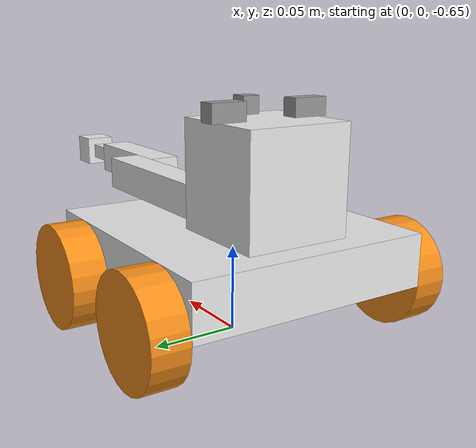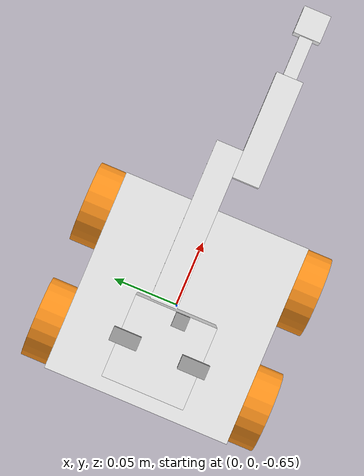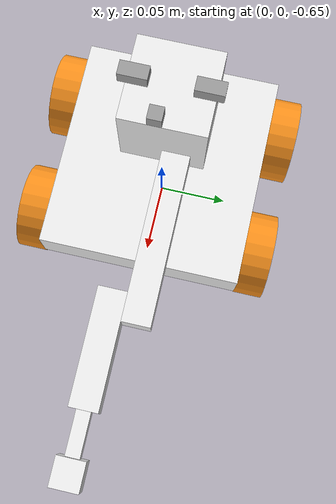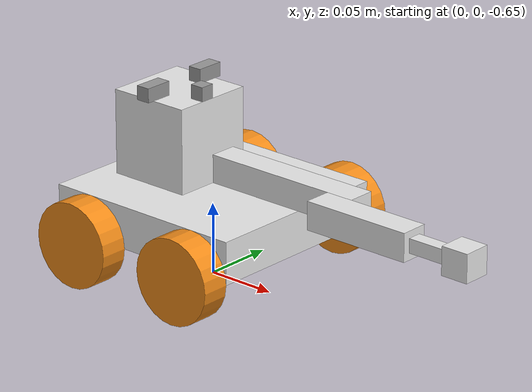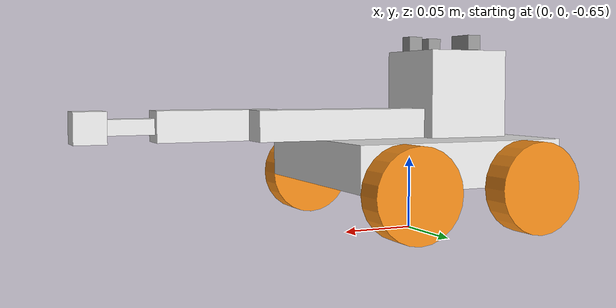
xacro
<?xml version='1.0'?>
<robot xmlns:xacro="http://www.ros.org/wiki/xacro" name="project_robot">

    <!-- Importing other files -->
    <xacro:include filename="$(find 285610)/urdf/materials.xacro" />
    <xacro:include filename="$(find 285610)/urdf/inertial.urdf.xacro" />
    <xacro:include filename="$(find 285610)/urdf/285610_robot.gazebo" />

    <!-- Body dimentions -->
    <xacro:property name="body_x" value="0.15" />
    <xacro:property name="body_y" value="0.14" />
    <xacro:property name="body_z" value="0.03" />

    <!-- Wheel dimentions -->
    <xacro:property name="wheel_r" value="0.03" />
    <xacro:property name="wheel_l" value="0.02" />
    <xacro:property name="wheel_x" value="${body_x/2.0-wheel_r}" />
    <xacro:property name="wheel_y" value="${body_y/2.0+wheel_l/2.0}" />
    <xacro:property name="wheel_z" value="${-body_z/2.0}" />

    <!-- Upper arm dimentions -->
    <xacro:property name="upper_arm_x" value="0.14" />
    <xacro:property name="upper_arm_y" value="0.02" />
    <xacro:property name="upper_arm_z" value="0.02" />

    <!-- Forearm dimentions -->
    <xacro:property name="forearm_x" value="0.08" />
    <xacro:property name="forearm_y" value="0.02" />
    <xacro:property name="forearm_z" value="0.02" />

    <!-- Prism part dimentions -->
    <xacro:property name="prism_part_x" value="0.09" />
    <xacro:property name="prism_part_y" value="0.01" />
    <xacro:property name="prism_part_z" value="0.01" />

    <!-- Smasher dimentions -->
    <xacro:property name="smasher_x" value="0.02" />
    <xacro:property name="smasher_y" value="0.02" />
    <xacro:property name="smasher_z" value="0.02" />

    <!-- Counterweight dimentions -->
    <xacro:property name="counterweight_x" value="0.06" />
    <xacro:property name="counterweight_y" value="0.06" />
    <xacro:property name="counterweight_z" value="0.06" />

    <!-- Camera dimentions -->
    <xacro:property name="camera_x" value="0.01" />
    <xacro:property name="camera_y" value="0.01" />
    <xacro:property name="camera_z" value="0.01" />

    <!-- Camera dimentions -->
    <xacro:property name="lidar_x" value="0.02" />
    <xacro:property name="lidar_y" value="0.01" />
    <xacro:property name="lidar_z" value="0.01" />

    <!-- Material density -->
    <xacro:property name="body_density" value="2710.0" />
    <xacro:property name="wheel_density" value="2710.0" />
    <xacro:property name="upper_arm_density" value="2710.0" />
    <xacro:property name="forearm_density" value="2710.0" />
    <xacro:property name="prism_part_density" value="2710.0" />
    <xacro:property name="smasher_density" value="2710.0" />
    <xacro:property name="counterweight_density" value="2710.0" />
    <xacro:property name="camera_density" value="1000.0" />
    <xacro:property name="lidar_density" value="1000.0" />

    <!-- Pi constant -->
    <xacro:property name="Pi" value="3.14159265" />

    <!-- Masses -->
    <xacro:property name="body_mass" value="${body_density*body_x*body_y*body_z}" />
    <xacro:property name="wheel_mass" value="${wheel_density*Pi*wheel_r*wheel_r*wheel_l}" />
    <xacro:property name="upper_arm_mass" value="${upper_arm_density*upper_arm_x*upper_arm_y*upper_arm_z}" />
    <xacro:property name="forearm_mass" value="${forearm_density*forearm_x*forearm_y*forearm_z}" />
    <xacro:property name="prism_part_mass" value="${prism_part_density*prism_part_x*prism_part_y*prism_part_z}" />
    <xacro:property name="smasher_mass" value="${smasher_density*smasher_x*smasher_y*smasher_z}" />
    <xacro:property name="counterweight_mass" value="${counterweight_density*counterweight_x*counterweight_y*counterweight_z}" />
    <xacro:property name="camera_mass" value="${camera_density*camera_x*camera_y*camera_z}" />
    <xacro:property name="lidar_mass" value="${lidar_density*lidar_x*lidar_y*lidar_z}" />

    <!-- Defining wheel -->
    <xacro:macro name="define_wheel" params="x y z name">
        <link name='wheel_${name}'>
            <visual>
                <origin xyz="0 0 0" rpy="0 ${Pi/2} 0"/>
                <geometry>
                    <cylinder length="${wheel_l}" radius="${wheel_r}"/>
                </geometry>
                <material name="orange"/>
            </visual>

            <collision>
                <origin xyz="0 0 0" rpy="0 ${Pi/2} 0"/>
                <geometry>
                    <cylinder length="${wheel_l}" radius="${wheel_r}"/>
                </geometry>
            </collision>
            <xacro:inertial_cylinder length="${wheel_l}" radius="${wheel_r}" mass="${wheel_mass}">
                <origin xyz="0 0 0" rpy="0 ${Pi/2} 0"/>
            </xacro:inertial_cylinder>
        </link>

        <joint type="continuous" name="wheel_${name}_joint">
            <origin xyz="${x} ${y} ${z}" rpy="0 0 ${Pi/2}"/>
            <child link="wheel_${name}"/>
            <parent link="base_link"/>
        </joint>
    </xacro:macro>

    <!-- Links start here -->

    <link name="world_link" />

    <joint name="world_link_joint" type="fixed">
        <origin xyz="0.0 0.0 -0.6" rpy="0.0 0.0 0.0"/>
        <parent link="world_link"/>
        <child link="base_link"/>
    </joint>

    <link name='base_link'>
        <visual>
            <origin xyz="0.0 0.0 0.0" rpy="0.0 0.0 0.0"/>
            <geometry>
                <box size="${body_x} ${body_y} ${body_z}"/>
            </geometry>
            <material name="white"/>
        </visual>
        <collision>
            <origin xyz="0.0 0.0 0.0" rpy="0.0 0.0 0.0"/>
            <geometry>
                <box size="${body_x} ${body_y} ${body_z}"/>
            </geometry>
        </collision>
        <xacro:inertial_box x="${body_x}" y="${body_y}" z="${body_z}" mass="${body_mass}">
            <origin xyz="0.0 0.0 0.0" rpy="0.0 0.0 0.0"/>
        </xacro:inertial_box>
    </link>

    <!-- Wheels -->
    <xacro:define_wheel x="${wheel_x}" y="${wheel_y}" z="${wheel_z}" name="1"/>
    <xacro:define_wheel x="-${wheel_x}" y="${wheel_y}" z="${wheel_z}" name="2"/>
    <xacro:define_wheel x="${wheel_x}" y="-${wheel_y}" z="${wheel_z}" name="3"/>
    <xacro:define_wheel x="-${wheel_x}" y="-${wheel_y}" z="${wheel_z}" name="4"/>

    <!-- Upper arm -->
    <link name="upper_arm">
        <visual>
            <origin xyz="${body_x/3} ${upper_arm_y/2} ${upper_arm_z/2}" rpy="0 0 0"/>
            <geometry>
                <box size="${upper_arm_x} ${upper_arm_y} ${upper_arm_z}"/>
            </geometry>
            <material name="white"/>
        </visual>
        <collision>
            <origin xyz="${body_x/3} ${upper_arm_y/2} ${upper_arm_z/2}" rpy="0 0 0"/>
            <geometry>
                <box size="${upper_arm_x} ${upper_arm_y} ${upper_arm_z}"/>
            </geometry>
        </collision>
        <xacro:inertial_box x="${upper_arm_x}" y="${upper_arm_y}" z="${upper_arm_z}" mass="${upper_arm_mass}">
            <origin xyz="${body_x/3} ${upper_arm_y/2} ${upper_arm_z/2}" rpy="0 0 0"/>
        </xacro:inertial_box>
    </link>

    <joint type="revolute" name="upper_arm_joint" >
        <origin xyz="0 0 ${body_z/2}" rpy="0 0 0"/>
        <child link="upper_arm"/>
        <parent link="base_link"/>
        <axis xyz="0 0 1"/>
        <limit lower="${-Pi}" upper="${Pi}" effort="1" velocity="10"/>
    </joint>

    <!-- Forearm -->
    <link name="forearm">
        <visual>
            <origin xyz="${forearm_x/2-forearm_y/2} ${-forearm_y/2} 0" rpy="0 0 0"/>
            <geometry>
                <box size="${forearm_x} ${forearm_y} ${forearm_z}"/>
            </geometry>
            <material name="white"/>
        </visual>
        <collision>
            <origin xyz="${forearm_x/2-forearm_y/2} ${-forearm_y/2} 0" rpy="0 0 0"/>
            <geometry>
                <box size="${forearm_x} ${forearm_y} ${forearm_z}"/>
            </geometry>
        </collision>
        <xacro:inertial_box x="${forearm_x}" y="${forearm_y}" z="${forearm_z}" mass="${forearm_mass}">
            <origin xyz="${forearm_x/2-forearm_y/2} ${-forearm_y/2} 0" rpy="0 0 0"/>
        </xacro:inertial_box>
    </link>

    <joint type="revolute" name="forearm_joint" >
        <origin xyz="${body_x/3+upper_arm_x/2-upper_arm_y/2} 0 ${upper_arm_z/2}" rpy="0 0 0"/>
        <parent link="upper_arm"/>
        <child link="forearm"/>
        <axis xyz="0 1 0"/>
        <limit lower="${-Pi}" upper="${Pi/2}" effort="1" velocity="10"/>
    </joint>

    <!-- Prism part -->
    <link name="prism_part">
        <visual>
            <origin xyz="${prism_part_x/2} 0 0" rpy="0 0 0"/>
            <geometry>
                <box size="${prism_part_x} ${prism_part_y} ${prism_part_z}"/>
            </geometry>
            <material name="white"/>
        </visual>
        <collision>
            <origin xyz="0 0 0" rpy="0 0 0"/>
            <geometry>
                <box size="${prism_part_x} ${prism_part_y} ${prism_part_z}"/>
            </geometry>
        </collision>
        <xacro:inertial_box x="${prism_part_x}" y="${prism_part_y}" z="${prism_part_z}" mass="${prism_part_mass}">
            <origin xyz="${prism_part_x/2} 0 0" rpy="0 0 0"/>
        </xacro:inertial_box>
    </link>

    <joint type="prismatic" name="prism_part_joint" >
        <origin xyz="${forearm_y/2} ${-forearm_y/2} 0" rpy="0 0 0"/>
        <parent link="forearm"/>
        <child link="prism_part"/>
        <axis xyz="1 0 0"/>
        <limit lower="0" upper="${prism_part_x/2}" effort="1" velocity="10"/>
    </joint>

    <!-- Smasher -->
    <link name="smasher">
        <visual>
            <origin xyz="${smasher_x/2} 0 0" rpy="0 0 0"/>
            <geometry>
                <box size="${smasher_x} ${smasher_y} ${smasher_z}"/>
            </geometry>
            <material name="white"/>
        </visual>
        <collision>
            <origin xyz="0 0 0" rpy="0 0 0"/>
            <geometry>
                <box size="${smasher_x} ${smasher_y} ${smasher_z}"/>
            </geometry>
        </collision>
        <xacro:inertial_box x="${smasher_x}" y="${smasher_y}" z="${smasher_z}" mass="${smasher_mass}">
            <origin xyz="${smasher_x/2} 0 0" rpy="0 0 0"/>
        </xacro:inertial_box>
    </link>

    <joint type="revolute" name="smasher_joint" >
        <origin xyz="${prism_part_x} 0 0" rpy="0 0 0"/>
        <parent link="prism_part"/>
        <child link="smasher"/>
        <axis xyz="1 0 0"/>
        <limit lower="${-Pi}" upper="${Pi}" effort="1" velocity="10"/>
    </joint>

    <!-- Counterweight -->
    <link name="counterweight">
        <visual>
            <origin xyz="${-counterweight_x/2} 0 ${counterweight_z/2}" rpy="0 0 0"/>
            <geometry>
                <box size="${counterweight_x} ${counterweight_y} ${counterweight_z}"/>
            </geometry>
            <material name="white"/>
        </visual>
        <collision>
            <origin xyz="${-counterweight_x/2} 0 ${counterweight_z/2}" rpy="0 0 0"/>
            <geometry>
                <box size="${counterweight_x} ${counterweight_y} ${counterweight_z}"/>
            </geometry>
        </collision>
        <xacro:inertial_box x="${counterweight_x}" y="${counterweight_y}" z="${counterweight_z}" mass="${counterweight_mass}">
            <origin xyz="${-counterweight_x/2} 0 ${counterweight_z/2}" rpy="0 0 0"/>
        </xacro:inertial_box>
    </link>

    <joint type="fixed" name="counterweight_joint" >
        <origin xyz="0 0 0" rpy="0 0 0"/>
        <parent link="upper_arm"/>
        <child link="counterweight"/>
        <limit lower="${-Pi}" upper="${Pi}" effort="1" velocity="10"/>
    </joint>

    <!-- Camera -->
    <link name="camera">
        <visual>
            <origin xyz="${counterweight_x/2-camera_x/2} ${-camera_y/2} ${camera_z/2}" rpy=" 0 0 0"/>
            <geometry>
                <box size="${camera_x} ${camera_y} ${camera_z}"/>
            </geometry>
            <material name="grey"/>
        </visual>
        <collision>
            <origin xyz="${counterweight_x/2-camera_x/2} ${-camera_y/2} ${camera_z/2}" rpy=" 0 0 0"/>
            <geometry>
                <box size="${camera_x} ${camera_y} ${camera_z}"/>
            </geometry>
        </collision>
        <xacro:inertial_box x="${camera_x}" y="${camera_y}" z="${camera_z}" mass="${camera_mass}">
            <origin xyz="${counterweight_x/2-camera_x/2} ${-camera_y/2} ${camera_z/2}" rpy=" 0 0 0"/>
        </xacro:inertial_box>
    </link>

    <joint type="fixed" name="camera_joint">
        <origin xyz="${-counterweight_x/2} 0 ${counterweight_z}" rpy="0 0 0"/>
        <child link="camera"/>
        <parent link="counterweight"/>
    </joint>

    <!-- Lidar_l -->
    <link name="lidar_l">
        <visual>
            <origin xyz="0 ${counterweight_y/2-lidar_y/2} ${lidar_z/2}" rpy=" 0 0 ${Pi/2}"/>
            <geometry>
                <box size="${lidar_x} ${lidar_y} ${lidar_z}"/>
            </geometry>
            <material name="grey"/>
        </visual>
        <collision>
            <origin xyz="0 ${counterweight_y/2-lidar_y/2} ${lidar_z/2}" rpy=" 0 0 ${Pi/2}"/>
            <geometry>
                <box size="${lidar_x} ${lidar_y} ${lidar_z}"/>
            </geometry>
        </collision>
        <xacro:inertial_box x="${lidar_x}" y="${lidar_y}" z="${lidar_z}" mass="${lidar_mass}">
            <origin xyz="0 ${counterweight_y/2-lidar_y/2} ${lidar_z/2}" rpy=" 0 0 ${Pi/2}"/>
        </xacro:inertial_box>
    </link>

    <joint type="fixed" name="lidar_l_joint">
        <origin xyz="${-counterweight_x/2} 0 ${counterweight_z}" rpy="0 0 0"/>
        <child link="lidar_l"/>
        <parent link="counterweight"/>
    </joint>

    <!-- Lidar_r -->
    <link name="lidar_r">
        <visual>
            <origin xyz="0 ${-counterweight_y/2+lidar_y/2} ${lidar_z/2}" rpy=" 0 0 ${-Pi/2}"/>
            <geometry>
                <box size="${lidar_x} ${lidar_y} ${lidar_z}"/>
            </geometry>
            <material name="grey"/>
        </visual>
        <collision>
            <origin xyz="0 ${-counterweight_y/2+lidar_y/2} ${lidar_z/2}" rpy=" 0 0 ${-Pi/2}"/>
            <geometry>
                <box size="${lidar_x} ${lidar_y} ${lidar_z}"/>
            </geometry>
        </collision>
        <xacro:inertial_box x="${lidar_x}" y="${lidar_y}" z="${lidar_z}" mass="${lidar_mass}">
            <origin xyz="0 ${-counterweight_y/2+lidar_y/2} ${lidar_z/2}" rpy=" 0 0 ${-Pi/2}"/>
        </xacro:inertial_box>
    </link>

    <joint type="fixed" name="lidar_r_joint">
        <origin xyz="${-counterweight_x/2} 0 ${counterweight_z}" rpy="0 0 0"/>
        <child link="lidar_r"/>
        <parent link="counterweight"/>
    </joint>

    <!-- Transmission -->
    <transmission name="wheel_l_f_tran">
        <type>transmission_interface/SimpleTransmission</type>
        <joint name="wheel_1_joint">
            <hardwareInterface>hardware_interface/VelocityJointInterface</hardwareInterface>
        </joint>
        <actuator name="wheel_l_f_motor">
            <hardwareInterface>hardware_interface/VelocityJointInterface</hardwareInterface>
            <mechanicalReduction>1</mechanicalReduction>
        </actuator>
    </transmission>

    <transmission name="wheel_l_b_tran">
        <type>transmission_interface/SimpleTransmission</type>
        <joint name="wheel_2_joint">
            <hardwareInterface>hardware_interface/VelocityJointInterface</hardwareInterface>
        </joint>
        <actuator name="wheel_l_b_motor">
            <hardwareInterface>hardware_interface/VelocityJointInterface</hardwareInterface>
            <mechanicalReduction>1</mechanicalReduction>
        </actuator>
    </transmission>

    <transmission name="wheel_r_f_tran">
        <type>transmission_interface/SimpleTransmission</type>
        <joint name="wheel_3_joint">
            <hardwareInterface>hardware_interface/VelocityJointInterface</hardwareInterface>
        </joint>
        <actuator name="wheel_r_f_motor">
            <hardwareInterface>hardware_interface/VelocityJointInterface</hardwareInterface>
            <mechanicalReduction>1</mechanicalReduction>
        </actuator>
    </transmission>

    <transmission name="wheel_r_b_tran">
        <type>transmission_interface/SimpleTransmission</type>
        <joint name="wheel_4_joint">
            <hardwareInterface>hardware_interface/VelocityJointInterface</hardwareInterface>
        </joint>
        <actuator name="wheel_r_b_motor">
            <hardwareInterface>hardware_interface/VelocityJointInterface</hardwareInterface>
            <mechanicalReduction>1</mechanicalReduction>
        </actuator>
    </transmission>

    <transmission name="turret_tran">
        <type>transmission_interface/SimpleTransmission</type>
        <joint name="upper_arm_joint">
            <hardwareInterface>hardware_interface/EffortJointInterface</hardwareInterface>
        </joint>
        <actuator name="turret_motor">
            <hardwareInterface>hardware_interface/EffortJointInterface</hardwareInterface>
            <mechanicalReduction>1</mechanicalReduction>
        </actuator>
    </transmission>

    <transmission name="forearm_tran">
        <type>transmission_interface/SimpleTransmission</type>
        <joint name="forearm_joint">
            <hardwareInterface>hardware_interface/EffortJointInterface</hardwareInterface>
        </joint>
        <actuator name="forearm_motor">
            <hardwareInterface>hardware_interface/EffortJointInterface</hardwareInterface>
            <mechanicalReduction>1</mechanicalReduction>
        </actuator>
    </transmission>

    <transmission name="prismatic_tran">
        <type>transmission_interface/SimpleTransmission</type>
        <joint name="prism_part_joint">
            <hardwareInterface>hardware_interface/VelocityJointInterface</hardwareInterface>
        </joint>
        <actuator name="prismatic_motor">
            <hardwareInterface>hardware_interface/VelocityJointInterface</hardwareInterface>
            <mechanicalReduction>1</mechanicalReduction>
        </actuator>
    </transmission>

</robot>
